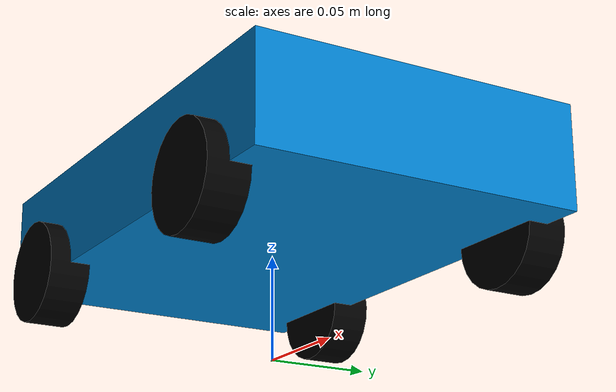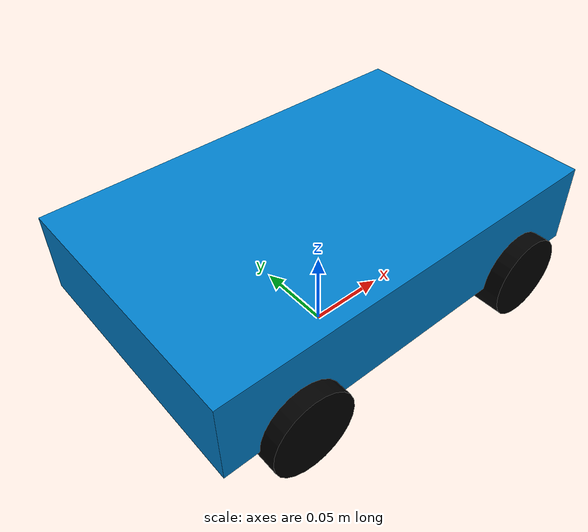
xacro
<?xml version="1.0"?>
<robot name="robot_base" xmlns:xacro="http://www.ros.org/wiki/xacro">
    <xacro:property name="PI" value="3.1415926" />
    <xacro:property name="base_link_width" value="0.16" />
    <xacro:property name="base_link_length" value="0.25" />
    <xacro:property name="base_link_height" value="0.05" />
    <xacro:property name="base_link_m" value="0.5" />
    <xacro:property name="earth_space" value="0.025" />
    <xacro:property name="wheel_offset" value="0.08" />

    <xacro:macro name="Box_inertial_matrix" params="m l w h">
        <inertial>
                <mass value="${m}" />
                <inertia ixx="${m*(h*h + l*l)/12}" ixy = "0" ixz = "0"
                    iyy="${m*(w*w + l*l)/12}" iyz= "0"
                    izz="${m*(w*w + h*h)/12}" />
        </inertial>
    </xacro:macro>

    <xacro:macro name="cylinder_inertial_matrix" params="m r h">
        <inertial>
            <mass value="${m}" />
            <inertia ixx="${m*(3*r*r+h*h)/12}" ixy = "0" ixz = "0"
                iyy="${m*(3*r*r+h*h)/12}" iyz = "0"
                izz="${m*r*r/2}" />
        </inertial>
    </xacro:macro>

    <link name="base_footprint">
        <visual>
            <geometry>
                <box size="0.001 0.001 0.001" />
            </geometry>
        </visual>
    </link>

    <link name="base_link">
        <visual>
            <geometry>
                <box size="${base_link_width} ${base_link_length} ${base_link_height}" />
            </geometry>
            <origin rpy="0 0 1.57075" xyz="0 0 0" />
            <material name="blue">
                <color rgba="0 .5 .8 1" />
            </material>
        </visual>

        <collision>
            <geometry>
                <box size="${base_link_width} ${base_link_length} ${base_link_height}" />
            </geometry>
            <origin xyz="0 0 0" rpy="0 0 0" />
        </collision>
        <xacro:Box_inertial_matrix m="${base_link_m}" w="${base_link_width}" l="${base_link_length}"
            h="${base_link_height}" />
    </link>

    <joint name="base_link2base_footprint" type="fixed">
        <parent link="base_footprint" />
        <child link="base_link" />
        <origin xyz="0 0 ${earth_space + base_link_height}" />
    </joint>

    <gazebo reference="base_link">
        <material>Gazebo/Yellow</material>
    </gazebo>

    <xacro:property name="wheel_radius" value="0.025" />
    <xacro:property name="wheel_length" value="0.02" />
    <xacro:property name="wheel_m" value="0.05" />
    <xacro:macro name="add_front_wheels" params="name flag">
        <link name="${name}_wheel">
            <visual>
                <geometry>
                    <cylinder radius="${wheel_radius}" length="${wheel_length}" />
                </geometry>
                <origin xyz="0.0 0.0 0.0" rpy="${PI / 2} 0.0 0.0" />
                <material name="black">
                    <color rgba="0 0 0 1" />
                </material>
            </visual>
            <collision>
                <geometry>
                    <cylinder radius="${wheel_radius}" length="${wheel_length}" />
                </geometry>
                <origin xyz="0.0 0.0 0.0" rpy="${PI / 2} 0.0 0.0" />
            </collision>
            <xacro:cylinder_inertial_matrix m="${wheel_m}" r="${wheel_radius}" h="${wheel_length}" />
        </link>

        <joint name="${name}_wheel2base_link" type="continuous">
            <parent link="base_link" />
            <child link="${name}_wheel" />
            <origin
                xyz="${wheel_offset} ${flag * base_link_width/2} ${-(earth_space + base_link_height / 2 - wheel_radius) }" />
            <axis xyz="0 1 0" />
        </joint>

        <gazebo reference="${name}_wheel">
            <material>Gazebo/Red</material>
        </gazebo>
    </xacro:macro>
    <xacro:add_front_wheels name="left_front" flag="1" />
    <xacro:add_front_wheels name="right_front" flag="-1" />

    <xacro:macro name="add_back_wheels" params="name flag">
        <link name="${name}_wheel">
            <visual>
                <geometry>
                    <cylinder radius="${wheel_radius}" length="${wheel_length}" />
                </geometry>
                <origin xyz="0.0 0.0 0.0" rpy="${PI / 2} 0.0 0.0" />
                <material name="black" />
            </visual>
            <collision>
                <geometry>
                    <cylinder radius="${wheel_radius}" length="${wheel_length}" />
                </geometry>
                <origin xyz="0.0 0.0 0.0" rpy="${PI / 2} 0.0 0.0" />
            </collision>
            <xacro:cylinder_inertial_matrix m="${wheel_m}" r="${wheel_radius}" h="${wheel_length}" />
        </link>

        <joint name="${name}_wheel2base_link" type="continuous">
            <parent link="base_link" />
            <child link="${name}_wheel" />
            <origin
                xyz="${-wheel_offset} ${flag * base_link_width/2} ${-(earth_space + base_link_height / 2 - wheel_radius) }" />
            <axis xyz="0 1 0" />
        </joint>
        <gazebo reference="${name}_wheel">
            <material>Gazebo/Red</material>
        </gazebo>
    </xacro:macro>
    <xacro:add_back_wheels name="left_back" flag="1" />
    <xacro:add_back_wheels name="right_back" flag="-1" />
</robot>
